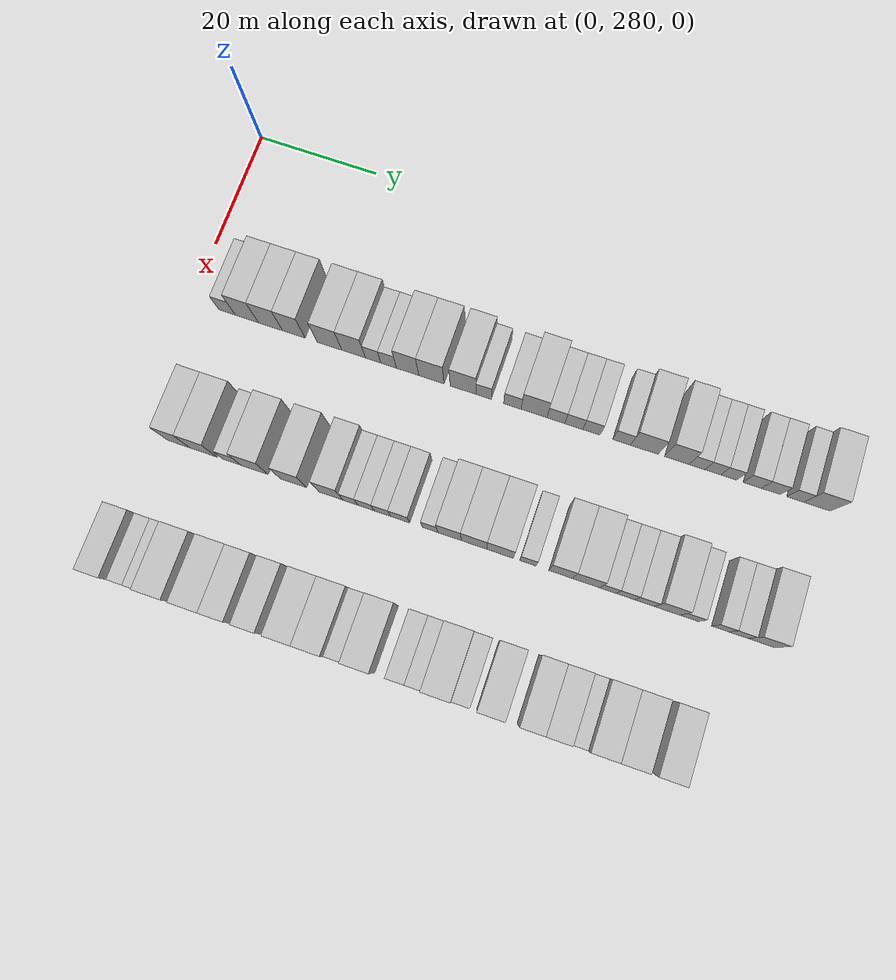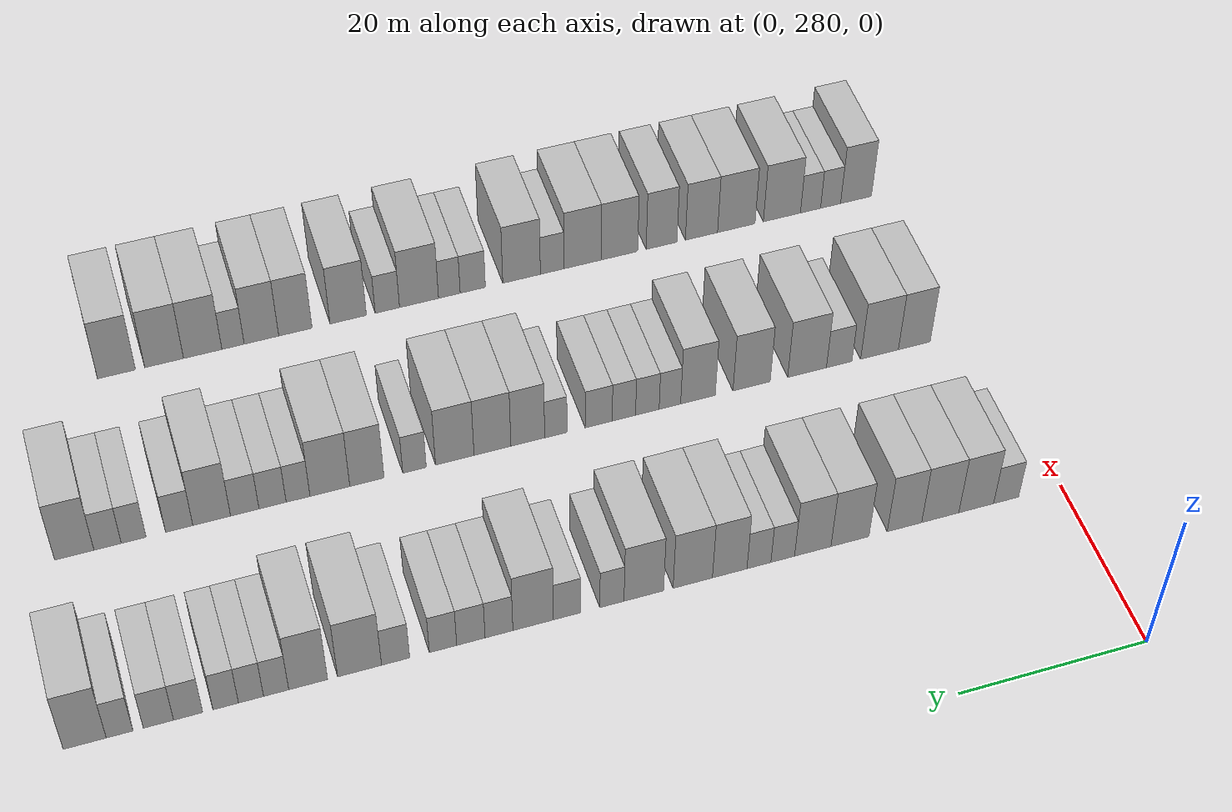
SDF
<sdf version="1.6">
 <world name="default">
  <model name="building_172">
   <static>1</static>
   <pose>25.0000 286.2029 0 0.000000 0.000000 0.000000</pose>
   <link name="link">
    <pose>0 0 3.00 0 0 0</pose>
    <collision name="collision"><geometry><box><size>10.0000 2.7897 6.0000</size></box></geometry></collision>
    <visual name="visual">
     <cast_shadows>0</cast_shadows>
     <geometry><box><size>10.0000 2.7897 6.0000</size></box></geometry>
     <material>
      <script>
       <uri>model://HANNAS_wall/materials/scripts</uri>
       <uri>model://HANNAS_wall/materials/textures</uri>
       <name>vrc/HANNAS_wall</name>
      </script>
     </material>
    </visual>
   </link>
  </model>
  <model name="building_173">
   <static>1</static>
   <pose>25.0000 289.5311 0 0.000000 0.000000 0.000000</pose>
   <link name="link">
    <pose>0 0 4.50 0 0 0</pose>
    <collision name="collision"><geometry><box><size>10.0000 3.8667 9.0000</size></box></geometry></collision>
    <visual name="visual">
     <cast_shadows>0</cast_shadows>
     <geometry><box><size>10.0000 3.8667 9.0000</size></box></geometry>
     <material>
      <script>
       <uri>model://HANNAS_wall/materials/scripts</uri>
       <uri>model://HANNAS_wall/materials/textures</uri>
       <name>vrc/HANNAS_wall</name>
      </script>
     </material>
    </visual>
   </link>
  </model>
  <model name="building_174">
   <static>1</static>
   <pose>25.0000 293.5119 0 0.000000 0.000000 0.000000</pose>
   <link name="link">
    <pose>0 0 4.50 0 0 0</pose>
    <collision name="collision"><geometry><box><size>10.0000 4.0949 9.0000</size></box></geometry></collision>
    <visual name="visual">
     <cast_shadows>0</cast_shadows>
     <geometry><box><size>10.0000 4.0949 9.0000</size></box></geometry>
     <material>
      <script>
       <uri>model://HANNAS_wall/materials/scripts</uri>
       <uri>model://HANNAS_wall/materials/textures</uri>
       <name>vrc/HANNAS_wall</name>
      </script>
     </material>
    </visual>
   </link>
  </model>
  <model name="building_175">
   <static>1</static>
   <pose>25.0000 297.4435 0 0.000000 0.000000 0.000000</pose>
   <link name="link">
    <pose>0 0 4.50 0 0 0</pose>
    <collision name="collision"><geometry><box><size>10.0000 3.7682 9.0000</size></box></geometry></collision>
    <visual name="visual">
     <cast_shadows>0</cast_shadows>
     <geometry><box><size>10.0000 3.7682 9.0000</size></box></geometry>
     <material>
      <script>
       <uri>model://HANNAS_wall/materials/scripts</uri>
       <uri>model://HANNAS_wall/materials/textures</uri>
       <name>vrc/HANNAS_wall</name>
      </script>
     </material>
    </visual>
   </link>
  </model>
  <model name="building_176">
   <static>1</static>
   <pose>25.0000 303.3947 0 0.000000 0.000000 0.000000</pose>
   <link name="link">
    <pose>0 0 4.50 0 0 0</pose>
    <collision name="collision"><geometry><box><size>10.0000 4.1342 9.0000</size></box></geometry></collision>
    <visual name="visual">
     <cast_shadows>0</cast_shadows>
     <geometry><box><size>10.0000 4.1342 9.0000</size></box></geometry>
     <material>
      <script>
       <uri>model://HANNAS_wall/materials/scripts</uri>
       <uri>model://HANNAS_wall/materials/textures</uri>
       <name>vrc/HANNAS_wall</name>
      </script>
     </material>
    </visual>
   </link>
  </model>
  <model name="building_177">
   <static>1</static>
   <pose>25.0000 307.4259 0 0.000000 0.000000 0.000000</pose>
   <link name="link">
    <pose>0 0 4.50 0 0 0</pose>
    <collision name="collision"><geometry><box><size>10.0000 3.9284 9.0000</size></box></geometry></collision>
    <visual name="visual">
     <cast_shadows>0</cast_shadows>
     <geometry><box><size>10.0000 3.9284 9.0000</size></box></geometry>
     <material>
      <script>
       <uri>model://HANNAS_wall/materials/scripts</uri>
       <uri>model://HANNAS_wall/materials/textures</uri>
       <name>vrc/HANNAS_wall</name>
      </script>
     </material>
    </visual>
   </link>
  </model>
  <model name="building_178">
   <static>1</static>
   <pose>25.0000 310.6622 0 0.000000 0.000000 0.000000</pose>
   <link name="link">
    <pose>0 0 3.00 0 0 0</pose>
    <collision name="collision"><geometry><box><size>10.0000 2.5441 6.0000</size></box></geometry></collision>
    <visual name="visual">
     <cast_shadows>0</cast_shadows>
     <geometry><box><size>10.0000 2.5441 6.0000</size></box></geometry>
     <material>
      <script>
       <uri>model://HANNAS_wall/materials/scripts</uri>
       <uri>model://HANNAS_wall/materials/textures</uri>
       <name>vrc/HANNAS_wall</name>
      </script>
     </material>
    </visual>
   </link>
  </model>
  <model name="building_179">
   <static>1</static>
   <pose>25.0000 313.2145 0 0.000000 0.000000 0.000000</pose>
   <link name="link">
    <pose>0 0 3.00 0 0 0</pose>
    <collision name="collision"><geometry><box><size>10.0000 2.5605 6.0000</size></box></geometry></collision>
    <visual name="visual">
     <cast_shadows>0</cast_shadows>
     <geometry><box><size>10.0000 2.5605 6.0000</size></box></geometry>
     <material>
      <script>
       <uri>model://HANNAS_wall/materials/scripts</uri>
       <uri>model://HANNAS_wall/materials/textures</uri>
       <name>vrc/HANNAS_wall</name>
      </script>
     </material>
    </visual>
   </link>
  </model>
  <model name="building_180">
   <static>1</static>
   <pose>25.0000 316.3344 0 0.000000 0.000000 0.000000</pose>
   <link name="link">
    <pose>0 0 4.50 0 0 0</pose>
    <collision name="collision"><geometry><box><size>10.0000 3.6793 9.0000</size></box></geometry></collision>
    <visual name="visual">
     <cast_shadows>0</cast_shadows>
     <geometry><box><size>10.0000 3.6793 9.0000</size></box></geometry>
     <material>
      <script>
       <uri>model://HANNAS_wall/materials/scripts</uri>
       <uri>model://HANNAS_wall/materials/textures</uri>
       <name>vrc/HANNAS_wall</name>
      </script>
     </material>
    </visual>
   </link>
  </model>
  <model name="building_181">
   <static>1</static>
   <pose>25.0000 320.2554 0 0.000000 0.000000 0.000000</pose>
   <link name="link">
    <pose>0 0 4.50 0 0 0</pose>
    <collision name="collision"><geometry><box><size>10.0000 4.1627 9.0000</size></box></geometry></collision>
    <visual name="visual">
     <cast_shadows>0</cast_shadows>
     <geometry><box><size>10.0000 4.1627 9.0000</size></box></geometry>
     <material>
      <script>
       <uri>model://HANNAS_wall/materials/scripts</uri>
       <uri>model://HANNAS_wall/materials/textures</uri>
       <name>vrc/HANNAS_wall</name>
      </script>
     </material>
    </visual>
   </link>
  </model>
  <model name="building_182">
   <static>1</static>
   <pose>25.0000 325.4178 0 0.000000 0.000000 0.000000</pose>
   <link name="link">
    <pose>0 0 4.50 0 0 0</pose>
    <collision name="collision"><geometry><box><size>10.0000 4.1621 9.0000</size></box></geometry></collision>
    <visual name="visual">
     <cast_shadows>0</cast_shadows>
     <geometry><box><size>10.0000 4.1621 9.0000</size></box></geometry>
     <material>
      <script>
       <uri>model://HANNAS_wall/materials/scripts</uri>
       <uri>model://HANNAS_wall/materials/textures</uri>
       <name>vrc/HANNAS_wall</name>
      </script>
     </material>
    </visual>
   </link>
  </model>
  <model name="building_183">
   <static>1</static>
   <pose>25.0000 328.7618 0 0.000000 0.000000 0.000000</pose>
   <link name="link">
    <pose>0 0 3.00 0 0 0</pose>
    <collision name="collision"><geometry><box><size>10.0000 2.5260 6.0000</size></box></geometry></collision>
    <visual name="visual">
     <cast_shadows>0</cast_shadows>
     <geometry><box><size>10.0000 2.5260 6.0000</size></box></geometry>
     <material>
      <script>
       <uri>model://HANNAS_wall/materials/scripts</uri>
       <uri>model://HANNAS_wall/materials/textures</uri>
       <name>vrc/HANNAS_wall</name>
      </script>
     </material>
    </visual>
   </link>
  </model>
  <model name="building_184">
   <static>1</static>
   <pose>25.0000 333.4334 0 0.000000 0.000000 0.000000</pose>
   <link name="link">
    <pose>0 0 3.00 0 0 0</pose>
    <collision name="collision"><geometry><box><size>10.0000 2.8171 6.0000</size></box></geometry></collision>
    <visual name="visual">
     <cast_shadows>0</cast_shadows>
     <geometry><box><size>10.0000 2.8171 6.0000</size></box></geometry>
     <material>
      <script>
       <uri>model://HANNAS_wall/materials/scripts</uri>
       <uri>model://HANNAS_wall/materials/textures</uri>
       <name>vrc/HANNAS_wall</name>
      </script>
     </material>
    </visual>
   </link>
  </model>
  <model name="building_185">
   <static>1</static>
   <pose>25.0000 336.9319 0 0.000000 0.000000 0.000000</pose>
   <link name="link">
    <pose>0 0 4.50 0 0 0</pose>
    <collision name="collision"><geometry><box><size>10.0000 4.1801 9.0000</size></box></geometry></collision>
    <visual name="visual">
     <cast_shadows>0</cast_shadows>
     <geometry><box><size>10.0000 4.1801 9.0000</size></box></geometry>
     <material>
      <script>
       <uri>model://HANNAS_wall/materials/scripts</uri>
       <uri>model://HANNAS_wall/materials/textures</uri>
       <name>vrc/HANNAS_wall</name>
      </script>
     </material>
    </visual>
   </link>
  </model>
  <model name="building_186">
   <static>1</static>
   <pose>25.0000 340.4474 0 0.000000 0.000000 0.000000</pose>
   <link name="link">
    <pose>0 0 3.00 0 0 0</pose>
    <collision name="collision"><geometry><box><size>10.0000 2.8509 6.0000</size></box></geometry></collision>
    <visual name="visual">
     <cast_shadows>0</cast_shadows>
     <geometry><box><size>10.0000 2.8509 6.0000</size></box></geometry>
     <material>
      <script>
       <uri>model://HANNAS_wall/materials/scripts</uri>
       <uri>model://HANNAS_wall/materials/textures</uri>
       <name>vrc/HANNAS_wall</name>
      </script>
     </material>
    </visual>
   </link>
  </model>
  <model name="building_187">
   <static>1</static>
   <pose>25.0000 343.3236 0 0.000000 0.000000 0.000000</pose>
   <link name="link">
    <pose>0 0 3.00 0 0 0</pose>
    <collision name="collision"><geometry><box><size>10.0000 2.9015 6.0000</size></box></geometry></collision>
    <visual name="visual">
     <cast_shadows>0</cast_shadows>
     <geometry><box><size>10.0000 2.9015 6.0000</size></box></geometry>
     <material>
      <script>
       <uri>model://HANNAS_wall/materials/scripts</uri>
       <uri>model://HANNAS_wall/materials/textures</uri>
       <name>vrc/HANNAS_wall</name>
      </script>
     </material>
    </visual>
   </link>
  </model>
  <model name="building_188">
   <static>1</static>
   <pose>25.0000 346.1617 0 0.000000 0.000000 0.000000</pose>
   <link name="link">
    <pose>0 0 3.00 0 0 0</pose>
    <collision name="collision"><geometry><box><size>10.0000 2.7747 6.0000</size></box></geometry></collision>
    <visual name="visual">
     <cast_shadows>0</cast_shadows>
     <geometry><box><size>10.0000 2.7747 6.0000</size></box></geometry>
     <material>
      <script>
       <uri>model://HANNAS_wall/materials/scripts</uri>
       <uri>model://HANNAS_wall/materials/textures</uri>
       <name>vrc/HANNAS_wall</name>
      </script>
     </material>
    </visual>
   </link>
  </model>
  <model name="building_189">
   <static>1</static>
   <pose>25.0000 350.9665 0 0.000000 0.000000 0.000000</pose>
   <link name="link">
    <pose>0 0 3.00 0 0 0</pose>
    <collision name="collision"><geometry><box><size>10.0000 2.8349 6.0000</size></box></geometry></collision>
    <visual name="visual">
     <cast_shadows>0</cast_shadows>
     <geometry><box><size>10.0000 2.8349 6.0000</size></box></geometry>
     <material>
      <script>
       <uri>model://HANNAS_wall/materials/scripts</uri>
       <uri>model://HANNAS_wall/materials/textures</uri>
       <name>vrc/HANNAS_wall</name>
      </script>
     </material>
    </visual>
   </link>
  </model>
  <model name="building_190">
   <static>1</static>
   <pose>25.0000 354.5864 0 0.000000 0.000000 0.000000</pose>
   <link name="link">
    <pose>0 0 4.50 0 0 0</pose>
    <collision name="collision"><geometry><box><size>10.0000 4.4050 9.0000</size></box></geometry></collision>
    <visual name="visual">
     <cast_shadows>0</cast_shadows>
     <geometry><box><size>10.0000 4.4050 9.0000</size></box></geometry>
     <material>
      <script>
       <uri>model://HANNAS_wall/materials/scripts</uri>
       <uri>model://HANNAS_wall/materials/textures</uri>
       <name>vrc/HANNAS_wall</name>
      </script>
     </material>
    </visual>
   </link>
  </model>
  <model name="building_191">
   <static>1</static>
   <pose>25.0000 359.7237 0 0.000000 0.000000 0.000000</pose>
   <link name="link">
    <pose>0 0 4.50 0 0 0</pose>
    <collision name="collision"><geometry><box><size>10.0000 3.8695 9.0000</size></box></geometry></collision>
    <visual name="visual">
     <cast_shadows>0</cast_shadows>
     <geometry><box><size>10.0000 3.8695 9.0000</size></box></geometry>
     <material>
      <script>
       <uri>model://HANNAS_wall/materials/scripts</uri>
       <uri>model://HANNAS_wall/materials/textures</uri>
       <name>vrc/HANNAS_wall</name>
      </script>
     </material>
    </visual>
   </link>
  </model>
  <model name="building_192">
   <static>1</static>
   <pose>25.0000 362.9042 0 0.000000 0.000000 0.000000</pose>
   <link name="link">
    <pose>0 0 3.00 0 0 0</pose>
    <collision name="collision"><geometry><box><size>10.0000 2.4915 6.0000</size></box></geometry></collision>
    <visual name="visual">
     <cast_shadows>0</cast_shadows>
     <geometry><box><size>10.0000 2.4915 6.0000</size></box></geometry>
     <material>
      <script>
       <uri>model://HANNAS_wall/materials/scripts</uri>
       <uri>model://HANNAS_wall/materials/textures</uri>
       <name>vrc/HANNAS_wall</name>
      </script>
     </material>
    </visual>
   </link>
  </model>
  <model name="building_193">
   <static>1</static>
   <pose>25.0000 365.3871 0 0.000000 0.000000 0.000000</pose>
   <link name="link">
    <pose>0 0 3.00 0 0 0</pose>
    <collision name="collision"><geometry><box><size>10.0000 2.4743 6.0000</size></box></geometry></collision>
    <visual name="visual">
     <cast_shadows>0</cast_shadows>
     <geometry><box><size>10.0000 2.4743 6.0000</size></box></geometry>
     <material>
      <script>
       <uri>model://HANNAS_wall/materials/scripts</uri>
       <uri>model://HANNAS_wall/materials/textures</uri>
       <name>vrc/HANNAS_wall</name>
      </script>
     </material>
    </visual>
   </link>
  </model>
  <model name="building_194">
   <static>1</static>
   <pose>25.0000 367.8754 0 0.000000 0.000000 0.000000</pose>
   <link name="link">
    <pose>0 0 3.00 0 0 0</pose>
    <collision name="collision"><geometry><box><size>10.0000 2.5022 6.0000</size></box></geometry></collision>
    <visual name="visual">
     <cast_shadows>0</cast_shadows>
     <geometry><box><size>10.0000 2.5022 6.0000</size></box></geometry>
     <material>
      <script>
       <uri>model://HANNAS_wall/materials/scripts</uri>
       <uri>model://HANNAS_wall/materials/textures</uri>
       <name>vrc/HANNAS_wall</name>
      </script>
     </material>
    </visual>
   </link>
  </model>
  <model name="building_195">
   <static>1</static>
   <pose>25.0000 371.5514 0 0.000000 0.000000 0.000000</pose>
   <link name="link">
    <pose>0 0 3.00 0 0 0</pose>
    <collision name="collision"><geometry><box><size>10.0000 2.8500 6.0000</size></box></geometry></collision>
    <visual name="visual">
     <cast_shadows>0</cast_shadows>
     <geometry><box><size>10.0000 2.8500 6.0000</size></box></geometry>
     <material>
      <script>
       <uri>model://HANNAS_wall/materials/scripts</uri>
       <uri>model://HANNAS_wall/materials/textures</uri>
       <name>vrc/HANNAS_wall</name>
      </script>
     </material>
    </visual>
   </link>
  </model>
  <model name="building_196">
   <static>1</static>
   <pose>25.0000 374.4464 0 0.000000 0.000000 0.000000</pose>
   <link name="link">
    <pose>0 0 3.00 0 0 0</pose>
    <collision name="collision"><geometry><box><size>10.0000 2.9399 6.0000</size></box></geometry></collision>
    <visual name="visual">
     <cast_shadows>0</cast_shadows>
     <geometry><box><size>10.0000 2.9399 6.0000</size></box></geometry>
     <material>
      <script>
       <uri>model://HANNAS_wall/materials/scripts</uri>
       <uri>model://HANNAS_wall/materials/textures</uri>
       <name>vrc/HANNAS_wall</name>
      </script>
     </material>
    </visual>
   </link>
  </model>
  <model name="building_197">
   <static>1</static>
   <pose>25.0000 378.2085 0 0.000000 0.000000 0.000000</pose>
   <link name="link">
    <pose>0 0 3.00 0 0 0</pose>
    <collision name="collision"><geometry><box><size>10.0000 2.5844 6.0000</size></box></geometry></collision>
    <visual name="visual">
     <cast_shadows>0</cast_shadows>
     <geometry><box><size>10.0000 2.5844 6.0000</size></box></geometry>
     <material>
      <script>
       <uri>model://HANNAS_wall/materials/scripts</uri>
       <uri>model://HANNAS_wall/materials/textures</uri>
       <name>vrc/HANNAS_wall</name>
      </script>
     </material>
    </visual>
   </link>
  </model>
  <model name="building_198">
   <static>1</static>
   <pose>25.0000 381.5692 0 0.000000 0.000000 0.000000</pose>
   <link name="link">
    <pose>0 0 4.50 0 0 0</pose>
    <collision name="collision"><geometry><box><size>10.0000 4.1371 9.0000</size></box></geometry></collision>
    <visual name="visual">
     <cast_shadows>0</cast_shadows>
     <geometry><box><size>10.0000 4.1371 9.0000</size></box></geometry>
     <material>
      <script>
       <uri>model://HANNAS_wall/materials/scripts</uri>
       <uri>model://HANNAS_wall/materials/textures</uri>
       <name>vrc/HANNAS_wall</name>
      </script>
     </material>
    </visual>
   </link>
  </model>
  <model name="building_359">
   <static>1</static>
   <pose>47.0000 287.2759 0 0.000000 0.000000 0.000000</pose>
   <link name="link">
    <pose>0 0 4.50 0 0 0</pose>
    <collision name="collision"><geometry><box><size>10.0000 3.7039 9.0000</size></box></geometry></collision>
    <visual name="visual">
     <cast_shadows>0</cast_shadows>
     <geometry><box><size>10.0000 3.7039 9.0000</size></box></geometry>
     <material>
      <script>
       <uri>model://HANNAS_wall/materials/scripts</uri>
       <uri>model://HANNAS_wall/materials/textures</uri>
       <name>vrc/HANNAS_wall</name>
      </script>
     </material>
    </visual>
   </link>
  </model>
  <model name="building_360">
   <static>1</static>
   <pose>47.0000 291.3091 0 0.000000 0.000000 0.000000</pose>
   <link name="link">
    <pose>0 0 4.50 0 0 0</pose>
    <collision name="collision"><geometry><box><size>10.0000 4.3625 9.0000</size></box></geometry></collision>
    <visual name="visual">
     <cast_shadows>0</cast_shadows>
     <geometry><box><size>10.0000 4.3625 9.0000</size></box></geometry>
     <material>
      <script>
       <uri>model://HANNAS_wall/materials/scripts</uri>
       <uri>model://HANNAS_wall/materials/textures</uri>
       <name>vrc/HANNAS_wall</name>
      </script>
     </material>
    </visual>
   </link>
  </model>
  <model name="building_361">
   <static>1</static>
   <pose>47.0000 295.9614 0 0.000000 0.000000 0.000000</pose>
   <link name="link">
    <pose>0 0 3.00 0 0 0</pose>
    <collision name="collision"><geometry><box><size>10.0000 2.9422 6.0000</size></box></geometry></collision>
    <visual name="visual">
     <cast_shadows>0</cast_shadows>
     <geometry><box><size>10.0000 2.9422 6.0000</size></box></geometry>
     <material>
      <script>
       <uri>model://HANNAS_wall/materials/scripts</uri>
       <uri>model://HANNAS_wall/materials/textures</uri>
       <name>vrc/HANNAS_wall</name>
      </script>
     </material>
    </visual>
   </link>
  </model>
  <model name="building_362">
   <static>1</static>
   <pose>47.0000 299.6468 0 0.000000 0.000000 0.000000</pose>
   <link name="link">
    <pose>0 0 4.50 0 0 0</pose>
    <collision name="collision"><geometry><box><size>10.0000 4.4284 9.0000</size></box></geometry></collision>
    <visual name="visual">
     <cast_shadows>0</cast_shadows>
     <geometry><box><size>10.0000 4.4284 9.0000</size></box></geometry>
     <material>
      <script>
       <uri>model://HANNAS_wall/materials/scripts</uri>
       <uri>model://HANNAS_wall/materials/textures</uri>
       <name>vrc/HANNAS_wall</name>
      </script>
     </material>
    </visual>
   </link>
  </model>
  <model name="building_363">
   <static>1</static>
   <pose>47.0000 305.9651 0 0.000000 0.000000 0.000000</pose>
   <link name="link">
    <pose>0 0 4.50 0 0 0</pose>
    <collision name="collision"><geometry><box><size>10.0000 4.2082 9.0000</size></box></geometry></collision>
    <visual name="visual">
     <cast_shadows>0</cast_shadows>
     <geometry><box><size>10.0000 4.2082 9.0000</size></box></geometry>
     <material>
      <script>
       <uri>model://HANNAS_wall/materials/scripts</uri>
       <uri>model://HANNAS_wall/materials/textures</uri>
       <name>vrc/HANNAS_wall</name>
      </script>
     </material>
    </visual>
   </link>
  </model>
  <model name="building_364">
   <static>1</static>
   <pose>47.0000 312.0147 0 0.000000 0.000000 0.000000</pose>
   <link name="link">
    <pose>0 0 4.50 0 0 0</pose>
    <collision name="collision"><geometry><box><size>10.0000 3.8911 9.0000</size></box></geometry></collision>
    <visual name="visual">
     <cast_shadows>0</cast_shadows>
     <geometry><box><size>10.0000 3.8911 9.0000</size></box></geometry>
     <material>
      <script>
       <uri>model://HANNAS_wall/materials/scripts</uri>
       <uri>model://HANNAS_wall/materials/textures</uri>
       <name>vrc/HANNAS_wall</name>
      </script>
     </material>
    </visual>
   </link>
  </model>
  <model name="building_365">
   <static>1</static>
   <pose>47.0000 315.1624 0 0.000000 0.000000 0.000000</pose>
   <link name="link">
    <pose>0 0 3.00 0 0 0</pose>
    <collision name="collision"><geometry><box><size>10.0000 2.4042 6.0000</size></box></geometry></collision>
    <visual name="visual">
     <cast_shadows>0</cast_shadows>
     <geometry><box><size>10.0000 2.4042 6.0000</size></box></geometry>
     <material>
      <script>
       <uri>model://HANNAS_wall/materials/scripts</uri>
       <uri>model://HANNAS_wall/materials/textures</uri>
       <name>vrc/HANNAS_wall</name>
      </script>
     </material>
    </visual>
   </link>
  </model>
  <model name="building_366">
   <static>1</static>
   <pose>47.0000 317.6771 0 0.000000 0.000000 0.000000</pose>
   <link name="link">
    <pose>0 0 3.00 0 0 0</pose>
    <collision name="collision"><geometry><box><size>10.0000 2.6253 6.0000</size></box></geometry></collision>
    <visual name="visual">
     <cast_shadows>0</cast_shadows>
     <geometry><box><size>10.0000 2.6253 6.0000</size></box></geometry>
     <material>
      <script>
       <uri>model://HANNAS_wall/materials/scripts</uri>
       <uri>model://HANNAS_wall/materials/textures</uri>
       <name>vrc/HANNAS_wall</name>
      </script>
     </material>
    </visual>
   </link>
  </model>
  <model name="building_367">
   <static>1</static>
   <pose>47.0000 320.2850 0 0.000000 0.000000 0.000000</pose>
   <link name="link">
    <pose>0 0 3.00 0 0 0</pose>
    <collision name="collision"><geometry><box><size>10.0000 2.5906 6.0000</size></box></geometry></collision>
    <visual name="visual">
     <cast_shadows>0</cast_shadows>
     <geometry><box><size>10.0000 2.5906 6.0000</size></box></geometry>
     <material>
      <script>
       <uri>model://HANNAS_wall/materials/scripts</uri>
       <uri>model://HANNAS_wall/materials/textures</uri>
       <name>vrc/HANNAS_wall</name>
      </script>
     </material>
    </visual>
   </link>
  </model>
  <model name="building_368">
   <static>1</static>
   <pose>47.0000 323.0760 0 0.000000 0.000000 0.000000</pose>
   <link name="link">
    <pose>0 0 3.00 0 0 0</pose>
    <collision name="collision"><geometry><box><size>10.0000 2.9914 6.0000</size></box></geometry></collision>
    <visual name="visual">
     <cast_shadows>0</cast_shadows>
     <geometry><box><size>10.0000 2.9914 6.0000</size></box></geometry>
     <material>
      <script>
       <uri>model://HANNAS_wall/materials/scripts</uri>
       <uri>model://HANNAS_wall/materials/textures</uri>
       <name>vrc/HANNAS_wall</name>
      </script>
     </material>
    </visual>
   </link>
  </model>
  <model name="building_369">
   <static>1</static>
   <pose>47.0000 327.7946 0 0.000000 0.000000 0.000000</pose>
   <link name="link">
    <pose>0 0 3.00 0 0 0</pose>
    <collision name="collision"><geometry><box><size>10.0000 2.4458 6.0000</size></box></geometry></collision>
    <visual name="visual">
     <cast_shadows>0</cast_shadows>
     <geometry><box><size>10.0000 2.4458 6.0000</size></box></geometry>
     <material>
      <script>
       <uri>model://HANNAS_wall/materials/scripts</uri>
       <uri>model://HANNAS_wall/materials/textures</uri>
       <name>vrc/HANNAS_wall</name>
      </script>
     </material>
    </visual>
   </link>
  </model>
  <model name="building_370">
   <static>1</static>
   <pose>47.0000 330.8596 0 0.000000 0.000000 0.000000</pose>
   <link name="link">
    <pose>0 0 4.50 0 0 0</pose>
    <collision name="collision"><geometry><box><size>10.0000 3.6844 9.0000</size></box></geometry></collision>
    <visual name="visual">
     <cast_shadows>0</cast_shadows>
     <geometry><box><size>10.0000 3.6844 9.0000</size></box></geometry>
     <material>
      <script>
       <uri>model://HANNAS_wall/materials/scripts</uri>
       <uri>model://HANNAS_wall/materials/textures</uri>
       <name>vrc/HANNAS_wall</name>
      </script>
     </material>
    </visual>
   </link>
  </model>
  <model name="building_371">
   <static>1</static>
   <pose>47.0000 334.7067 0 0.000000 0.000000 0.000000</pose>
   <link name="link">
    <pose>0 0 4.50 0 0 0</pose>
    <collision name="collision"><geometry><box><size>10.0000 4.0098 9.0000</size></box></geometry></collision>
    <visual name="visual">
     <cast_shadows>0</cast_shadows>
     <geometry><box><size>10.0000 4.0098 9.0000</size></box></geometry>
     <material>
      <script>
       <uri>model://HANNAS_wall/materials/scripts</uri>
       <uri>model://HANNAS_wall/materials/textures</uri>
       <name>vrc/HANNAS_wall</name>
      </script>
     </material>
    </visual>
   </link>
  </model>
  <model name="building_372">
   <static>1</static>
   <pose>47.0000 338.7901 0 0.000000 0.000000 0.000000</pose>
   <link name="link">
    <pose>0 0 4.50 0 0 0</pose>
    <collision name="collision"><geometry><box><size>10.0000 4.1570 9.0000</size></box></geometry></collision>
    <visual name="visual">
     <cast_shadows>0</cast_shadows>
     <geometry><box><size>10.0000 4.1570 9.0000</size></box></geometry>
     <material>
      <script>
       <uri>model://HANNAS_wall/materials/scripts</uri>
       <uri>model://HANNAS_wall/materials/textures</uri>
       <name>vrc/HANNAS_wall</name>
      </script>
     </material>
    </visual>
   </link>
  </model>
  <model name="building_373">
   <static>1</static>
   <pose>47.0000 343.1267 0 0.000000 0.000000 0.000000</pose>
   <link name="link">
    <pose>0 0 3.00 0 0 0</pose>
    <collision name="collision"><geometry><box><size>10.0000 2.5161 6.0000</size></box></geometry></collision>
    <visual name="visual">
     <cast_shadows>0</cast_shadows>
     <geometry><box><size>10.0000 2.5161 6.0000</size></box></geometry>
     <material>
      <script>
       <uri>model://HANNAS_wall/materials/scripts</uri>
       <uri>model://HANNAS_wall/materials/textures</uri>
       <name>vrc/HANNAS_wall</name>
      </script>
     </material>
    </visual>
   </link>
  </model>
  <model name="building_374">
   <static>1</static>
   <pose>47.0000 348.2101 0 0.000000 0.000000 0.000000</pose>
   <link name="link">
    <pose>0 0 4.50 0 0 0</pose>
    <collision name="collision"><geometry><box><size>10.0000 3.6507 9.0000</size></box></geometry></collision>
    <visual name="visual">
     <cast_shadows>0</cast_shadows>
     <geometry><box><size>10.0000 3.6507 9.0000</size></box></geometry>
     <material>
      <script>
       <uri>model://HANNAS_wall/materials/scripts</uri>
       <uri>model://HANNAS_wall/materials/textures</uri>
       <name>vrc/HANNAS_wall</name>
      </script>
     </material>
    </visual>
   </link>
  </model>
  <model name="building_375">
   <static>1</static>
   <pose>47.0000 352.1383 0 0.000000 0.000000 0.000000</pose>
   <link name="link">
    <pose>0 0 4.50 0 0 0</pose>
    <collision name="collision"><geometry><box><size>10.0000 4.2059 9.0000</size></box></geometry></collision>
    <visual name="visual">
     <cast_shadows>0</cast_shadows>
     <geometry><box><size>10.0000 4.2059 9.0000</size></box></geometry>
     <material>
      <script>
       <uri>model://HANNAS_wall/materials/scripts</uri>
       <uri>model://HANNAS_wall/materials/textures</uri>
       <name>vrc/HANNAS_wall</name>
      </script>
     </material>
    </visual>
   </link>
  </model>
  <model name="building_376">
   <static>1</static>
   <pose>47.0000 355.4985 0 0.000000 0.000000 0.000000</pose>
   <link name="link">
    <pose>0 0 3.00 0 0 0</pose>
    <collision name="collision"><geometry><box><size>10.0000 2.5144 6.0000</size></box></geometry></collision>
    <visual name="visual">
     <cast_shadows>0</cast_shadows>
     <geometry><box><size>10.0000 2.5144 6.0000</size></box></geometry>
     <material>
      <script>
       <uri>model://HANNAS_wall/materials/scripts</uri>
       <uri>model://HANNAS_wall/materials/textures</uri>
       <name>vrc/HANNAS_wall</name>
      </script>
     </material>
    </visual>
   </link>
  </model>
  <model name="building_377">
   <static>1</static>
   <pose>47.0000 358.1798 0 0.000000 0.000000 0.000000</pose>
   <link name="link">
    <pose>0 0 3.00 0 0 0</pose>
    <collision name="collision"><geometry><box><size>10.0000 2.8482 6.0000</size></box></geometry></collision>
    <visual name="visual">
     <cast_shadows>0</cast_shadows>
     <geometry><box><size>10.0000 2.8482 6.0000</size></box></geometry>
     <material>
      <script>
       <uri>model://HANNAS_wall/materials/scripts</uri>
       <uri>model://HANNAS_wall/materials/textures</uri>
       <name>vrc/HANNAS_wall</name>
      </script>
     </material>
    </visual>
   </link>
  </model>
  <model name="building_378">
   <static>1</static>
   <pose>47.0000 361.0875 0 0.000000 0.000000 0.000000</pose>
   <link name="link">
    <pose>0 0 3.00 0 0 0</pose>
    <collision name="collision"><geometry><box><size>10.0000 2.9673 6.0000</size></box></geometry></collision>
    <visual name="visual">
     <cast_shadows>0</cast_shadows>
     <geometry><box><size>10.0000 2.9673 6.0000</size></box></geometry>
     <material>
      <script>
       <uri>model://HANNAS_wall/materials/scripts</uri>
       <uri>model://HANNAS_wall/materials/textures</uri>
       <name>vrc/HANNAS_wall</name>
      </script>
     </material>
    </visual>
   </link>
  </model>
  <model name="building_379">
   <static>1</static>
   <pose>47.0000 364.5317 0 0.000000 0.000000 0.000000</pose>
   <link name="link">
    <pose>0 0 4.50 0 0 0</pose>
    <collision name="collision"><geometry><box><size>10.0000 3.9211 9.0000</size></box></geometry></collision>
    <visual name="visual">
     <cast_shadows>0</cast_shadows>
     <geometry><box><size>10.0000 3.9211 9.0000</size></box></geometry>
     <material>
      <script>
       <uri>model://HANNAS_wall/materials/scripts</uri>
       <uri>model://HANNAS_wall/materials/textures</uri>
       <name>vrc/HANNAS_wall</name>
      </script>
     </material>
    </visual>
   </link>
  </model>
  <model name="building_380">
   <static>1</static>
   <pose>47.0000 367.9013 0 0.000000 0.000000 0.000000</pose>
   <link name="link">
    <pose>0 0 3.00 0 0 0</pose>
    <collision name="collision"><geometry><box><size>10.0000 2.8181 6.0000</size></box></geometry></collision>
    <visual name="visual">
     <cast_shadows>0</cast_shadows>
     <geometry><box><size>10.0000 2.8181 6.0000</size></box></geometry>
     <material>
      <script>
       <uri>model://HANNAS_wall/materials/scripts</uri>
       <uri>model://HANNAS_wall/materials/textures</uri>
       <name>vrc/HANNAS_wall</name>
      </script>
     </material>
    </visual>
   </link>
  </model>
  <model name="building_381">
   <static>1</static>
   <pose>47.0000 372.5863 0 0.000000 0.000000 0.000000</pose>
   <link name="link">
    <pose>0 0 3.00 0 0 0</pose>
    <collision name="collision"><geometry><box><size>10.0000 2.5518 6.0000</size></box></geometry></collision>
    <visual name="visual">
     <cast_shadows>0</cast_shadows>
     <geometry><box><size>10.0000 2.5518 6.0000</size></box></geometry>
     <material>
      <script>
       <uri>model://HANNAS_wall/materials/scripts</uri>
       <uri>model://HANNAS_wall/materials/textures</uri>
       <name>vrc/HANNAS_wall</name>
      </script>
     </material>
    </visual>
   </link>
  </model>
  <model name="building_382">
   <static>1</static>
   <pose>47.0000 375.2591 0 0.000000 0.000000 0.000000</pose>
   <link name="link">
    <pose>0 0 3.00 0 0 0</pose>
    <collision name="collision"><geometry><box><size>10.0000 2.7939 6.0000</size></box></geometry></collision>
    <visual name="visual">
     <cast_shadows>0</cast_shadows>
     <geometry><box><size>10.0000 2.7939 6.0000</size></box></geometry>
     <material>
      <script>
       <uri>model://HANNAS_wall/materials/scripts</uri>
       <uri>model://HANNAS_wall/materials/textures</uri>
       <name>vrc/HANNAS_wall</name>
      </script>
     </material>
    </visual>
   </link>
  </model>
  <model name="building_383">
   <static>1</static>
   <pose>47.0000 378.6572 0 0.000000 0.000000 0.000000</pose>
   <link name="link">
    <pose>0 0 4.50 0 0 0</pose>
    <collision name="collision"><geometry><box><size>10.0000 4.0022 9.0000</size></box></geometry></collision>
    <visual name="visual">
     <cast_shadows>0</cast_shadows>
     <geometry><box><size>10.0000 4.0022 9.0000</size></box></geometry>
     <material>
      <script>
       <uri>model://HANNAS_wall/materials/scripts</uri>
       <uri>model://HANNAS_wall/materials/textures</uri>
       <name>vrc/HANNAS_wall</name>
      </script>
     </material>
    </visual>
   </link>
  </model>
  <model name="building_549">
   <static>1</static>
   <pose>69.0000 285.3143 0 0.000000 0.000000 0.000000</pose>
   <link name="link">
    <pose>0 0 4.50 0 0 0</pose>
    <collision name="collision"><geometry><box><size>10.0000 3.7587 9.0000</size></box></geometry></collision>
    <visual name="visual">
     <cast_shadows>0</cast_shadows>
     <geometry><box><size>10.0000 3.7587 9.0000</size></box></geometry>
     <material>
      <script>
       <uri>model://HANNAS_wall/materials/scripts</uri>
       <uri>model://HANNAS_wall/materials/textures</uri>
       <name>vrc/HANNAS_wall</name>
      </script>
     </material>
    </visual>
   </link>
  </model>
  <model name="building_550">
   <static>1</static>
   <pose>69.0000 288.4080 0 0.000000 0.000000 0.000000</pose>
   <link name="link">
    <pose>0 0 3.00 0 0 0</pose>
    <collision name="collision"><geometry><box><size>10.0000 2.4287 6.0000</size></box></geometry></collision>
    <visual name="visual">
     <cast_shadows>0</cast_shadows>
     <geometry><box><size>10.0000 2.4287 6.0000</size></box></geometry>
     <material>
      <script>
       <uri>model://HANNAS_wall/materials/scripts</uri>
       <uri>model://HANNAS_wall/materials/textures</uri>
       <name>vrc/HANNAS_wall</name>
      </script>
     </material>
    </visual>
   </link>
  </model>
  <model name="building_551">
   <static>1</static>
   <pose>69.0000 290.8377 0 0.000000 0.000000 0.000000</pose>
   <link name="link">
    <pose>0 0 3.00 0 0 0</pose>
    <collision name="collision"><geometry><box><size>10.0000 2.4307 6.0000</size></box></geometry></collision>
    <visual name="visual">
     <cast_shadows>0</cast_shadows>
     <geometry><box><size>10.0000 2.4307 6.0000</size></box></geometry>
     <material>
      <script>
       <uri>model://HANNAS_wall/materials/scripts</uri>
       <uri>model://HANNAS_wall/materials/textures</uri>
       <name>vrc/HANNAS_wall</name>
      </script>
     </material>
    </visual>
   </link>
  </model>
  <model name="building_552">
   <static>1</static>
   <pose>69.0000 294.2850 0 0.000000 0.000000 0.000000</pose>
   <link name="link">
    <pose>0 0 4.50 0 0 0</pose>
    <collision name="collision"><geometry><box><size>10.0000 4.4639 9.0000</size></box></geometry></collision>
    <visual name="visual">
     <cast_shadows>0</cast_shadows>
     <geometry><box><size>10.0000 4.4639 9.0000</size></box></geometry>
     <material>
      <script>
       <uri>model://HANNAS_wall/materials/scripts</uri>
       <uri>model://HANNAS_wall/materials/textures</uri>
       <name>vrc/HANNAS_wall</name>
      </script>
     </material>
    </visual>
   </link>
  </model>
  <model name="building_553">
   <static>1</static>
   <pose>69.0000 299.7555 0 0.000000 0.000000 0.000000</pose>
   <link name="link">
    <pose>0 0 4.50 0 0 0</pose>
    <collision name="collision"><geometry><box><size>10.0000 4.4771 9.0000</size></box></geometry></collision>
    <visual name="visual">
     <cast_shadows>0</cast_shadows>
     <geometry><box><size>10.0000 4.4771 9.0000</size></box></geometry>
     <material>
      <script>
       <uri>model://HANNAS_wall/materials/scripts</uri>
       <uri>model://HANNAS_wall/materials/textures</uri>
       <name>vrc/HANNAS_wall</name>
      </script>
     </material>
    </visual>
   </link>
  </model>
  <model name="building_554">
   <static>1</static>
   <pose>69.0000 303.9052 0 0.000000 0.000000 0.000000</pose>
   <link name="link">
    <pose>0 0 4.50 0 0 0</pose>
    <collision name="collision"><geometry><box><size>10.0000 3.8224 9.0000</size></box></geometry></collision>
    <visual name="visual">
     <cast_shadows>0</cast_shadows>
     <geometry><box><size>10.0000 3.8224 9.0000</size></box></geometry>
     <material>
      <script>
       <uri>model://HANNAS_wall/materials/scripts</uri>
       <uri>model://HANNAS_wall/materials/textures</uri>
       <name>vrc/HANNAS_wall</name>
      </script>
     </material>
    </visual>
   </link>
  </model>
  <model name="building_555">
   <static>1</static>
   <pose>69.0000 308.6321 0 0.000000 0.000000 0.000000</pose>
   <link name="link">
    <pose>0 0 4.50 0 0 0</pose>
    <collision name="collision"><geometry><box><size>10.0000 3.6314 9.0000</size></box></geometry></collision>
    <visual name="visual">
     <cast_shadows>0</cast_shadows>
     <geometry><box><size>10.0000 3.6314 9.0000</size></box></geometry>
     <material>
      <script>
       <uri>model://HANNAS_wall/materials/scripts</uri>
       <uri>model://HANNAS_wall/materials/textures</uri>
       <name>vrc/HANNAS_wall</name>
      </script>
     </material>
    </visual>
   </link>
  </model>
  <model name="building_556">
   <static>1</static>
   <pose>69.0000 313.5828 0 0.000000 0.000000 0.000000</pose>
   <link name="link">
    <pose>0 0 4.50 0 0 0</pose>
    <collision name="collision"><geometry><box><size>10.0000 4.2699 9.0000</size></box></geometry></collision>
    <visual name="visual">
     <cast_shadows>0</cast_shadows>
     <geometry><box><size>10.0000 4.2699 9.0000</size></box></geometry>
     <material>
      <script>
       <uri>model://HANNAS_wall/materials/scripts</uri>
       <uri>model://HANNAS_wall/materials/textures</uri>
       <name>vrc/HANNAS_wall</name>
      </script>
     </material>
    </visual>
   </link>
  </model>
  <model name="building_557">
   <static>1</static>
   <pose>69.0000 317.8788 0 0.000000 0.000000 0.000000</pose>
   <link name="link">
    <pose>0 0 4.50 0 0 0</pose>
    <collision name="collision"><geometry><box><size>10.0000 4.3221 9.0000</size></box></geometry></collision>
    <visual name="visual">
     <cast_shadows>0</cast_shadows>
     <geometry><box><size>10.0000 4.3221 9.0000</size></box></geometry>
     <material>
      <script>
       <uri>model://HANNAS_wall/materials/scripts</uri>
       <uri>model://HANNAS_wall/materials/textures</uri>
       <name>vrc/HANNAS_wall</name>
      </script>
     </material>
    </visual>
   </link>
  </model>
  <model name="building_558">
   <static>1</static>
   <pose>69.0000 321.4135 0 0.000000 0.000000 0.000000</pose>
   <link name="link">
    <pose>0 0 3.00 0 0 0</pose>
    <collision name="collision"><geometry><box><size>10.0000 2.7474 6.0000</size></box></geometry></collision>
    <visual name="visual">
     <cast_shadows>0</cast_shadows>
     <geometry><box><size>10.0000 2.7474 6.0000</size></box></geometry>
     <material>
      <script>
       <uri>model://HANNAS_wall/materials/scripts</uri>
       <uri>model://HANNAS_wall/materials/textures</uri>
       <name>vrc/HANNAS_wall</name>
      </script>
     </material>
    </visual>
   </link>
  </model>
  <model name="building_559">
   <static>1</static>
   <pose>69.0000 324.9539 0 0.000000 0.000000 0.000000</pose>
   <link name="link">
    <pose>0 0 4.50 0 0 0</pose>
    <collision name="collision"><geometry><box><size>10.0000 4.3334 9.0000</size></box></geometry></collision>
    <visual name="visual">
     <cast_shadows>0</cast_shadows>
     <geometry><box><size>10.0000 4.3334 9.0000</size></box></geometry>
     <material>
      <script>
       <uri>model://HANNAS_wall/materials/scripts</uri>
       <uri>model://HANNAS_wall/materials/textures</uri>
       <name>vrc/HANNAS_wall</name>
      </script>
     </material>
    </visual>
   </link>
  </model>
  <model name="building_560">
   <static>1</static>
   <pose>69.0000 330.5622 0 0.000000 0.000000 0.000000</pose>
   <link name="link">
    <pose>0 0 3.00 0 0 0</pose>
    <collision name="collision"><geometry><box><size>10.0000 2.8831 6.0000</size></box></geometry></collision>
    <visual name="visual">
     <cast_shadows>0</cast_shadows>
     <geometry><box><size>10.0000 2.8831 6.0000</size></box></geometry>
     <material>
      <script>
       <uri>model://HANNAS_wall/materials/scripts</uri>
       <uri>model://HANNAS_wall/materials/textures</uri>
       <name>vrc/HANNAS_wall</name>
      </script>
     </material>
    </visual>
   </link>
  </model>
  <model name="building_561">
   <static>1</static>
   <pose>69.0000 333.2376 0 0.000000 0.000000 0.000000</pose>
   <link name="link">
    <pose>0 0 3.00 0 0 0</pose>
    <collision name="collision"><geometry><box><size>10.0000 2.4678 6.0000</size></box></geometry></collision>
    <visual name="visual">
     <cast_shadows>0</cast_shadows>
     <geometry><box><size>10.0000 2.4678 6.0000</size></box></geometry>
     <material>
      <script>
       <uri>model://HANNAS_wall/materials/scripts</uri>
       <uri>model://HANNAS_wall/materials/textures</uri>
       <name>vrc/HANNAS_wall</name>
      </script>
     </material>
    </visual>
   </link>
  </model>
  <model name="building_562">
   <static>1</static>
   <pose>69.0000 336.6821 0 0.000000 0.000000 0.000000</pose>
   <link name="link">
    <pose>0 0 4.50 0 0 0</pose>
    <collision name="collision"><geometry><box><size>10.0000 4.4211 9.0000</size></box></geometry></collision>
    <visual name="visual">
     <cast_shadows>0</cast_shadows>
     <geometry><box><size>10.0000 4.4211 9.0000</size></box></geometry>
     <material>
      <script>
       <uri>model://HANNAS_wall/materials/scripts</uri>
       <uri>model://HANNAS_wall/materials/textures</uri>
       <name>vrc/HANNAS_wall</name>
      </script>
     </material>
    </visual>
   </link>
  </model>
  <model name="building_563">
   <static>1</static>
   <pose>69.0000 340.2628 0 0.000000 0.000000 0.000000</pose>
   <link name="link">
    <pose>0 0 3.00 0 0 0</pose>
    <collision name="collision"><geometry><box><size>10.0000 2.7404 6.0000</size></box></geometry></collision>
    <visual name="visual">
     <cast_shadows>0</cast_shadows>
     <geometry><box><size>10.0000 2.7404 6.0000</size></box></geometry>
     <material>
      <script>
       <uri>model://HANNAS_wall/materials/scripts</uri>
       <uri>model://HANNAS_wall/materials/textures</uri>
       <name>vrc/HANNAS_wall</name>
      </script>
     </material>
    </visual>
   </link>
  </model>
  <model name="building_564">
   <static>1</static>
   <pose>69.0000 344.6726 0 0.000000 0.000000 0.000000</pose>
   <link name="link">
    <pose>0 0 4.50 0 0 0</pose>
    <collision name="collision"><geometry><box><size>10.0000 4.0793 9.0000</size></box></geometry></collision>
    <visual name="visual">
     <cast_shadows>0</cast_shadows>
     <geometry><box><size>10.0000 4.0793 9.0000</size></box></geometry>
     <material>
      <script>
       <uri>model://HANNAS_wall/materials/scripts</uri>
       <uri>model://HANNAS_wall/materials/textures</uri>
       <name>vrc/HANNAS_wall</name>
      </script>
     </material>
    </visual>
   </link>
  </model>
  <model name="building_565">
   <static>1</static>
   <pose>69.0000 350.5687 0 0.000000 0.000000 0.000000</pose>
   <link name="link">
    <pose>0 0 4.50 0 0 0</pose>
    <collision name="collision"><geometry><box><size>10.0000 3.7128 9.0000</size></box></geometry></collision>
    <visual name="visual">
     <cast_shadows>0</cast_shadows>
     <geometry><box><size>10.0000 3.7128 9.0000</size></box></geometry>
     <material>
      <script>
       <uri>model://HANNAS_wall/materials/scripts</uri>
       <uri>model://HANNAS_wall/materials/textures</uri>
       <name>vrc/HANNAS_wall</name>
      </script>
     </material>
    </visual>
   </link>
  </model>
  <model name="building_566">
   <static>1</static>
   <pose>69.0000 354.3329 0 0.000000 0.000000 0.000000</pose>
   <link name="link">
    <pose>0 0 4.50 0 0 0</pose>
    <collision name="collision"><geometry><box><size>10.0000 3.8156 9.0000</size></box></geometry></collision>
    <visual name="visual">
     <cast_shadows>0</cast_shadows>
     <geometry><box><size>10.0000 3.8156 9.0000</size></box></geometry>
     <material>
      <script>
       <uri>model://HANNAS_wall/materials/scripts</uri>
       <uri>model://HANNAS_wall/materials/textures</uri>
       <name>vrc/HANNAS_wall</name>
      </script>
     </material>
    </visual>
   </link>
  </model>
  <model name="building_567">
   <static>1</static>
   <pose>69.0000 357.4702 0 0.000000 0.000000 0.000000</pose>
   <link name="link">
    <pose>0 0 3.00 0 0 0</pose>
    <collision name="collision"><geometry><box><size>10.0000 2.4591 6.0000</size></box></geometry></collision>
    <visual name="visual">
     <cast_shadows>0</cast_shadows>
     <geometry><box><size>10.0000 2.4591 6.0000</size></box></geometry>
     <material>
      <script>
       <uri>model://HANNAS_wall/materials/scripts</uri>
       <uri>model://HANNAS_wall/materials/textures</uri>
       <name>vrc/HANNAS_wall</name>
      </script>
     </material>
    </visual>
   </link>
  </model>
  <model name="building_568">
   <static>1</static>
   <pose>69.0000 360.8007 0 0.000000 0.000000 0.000000</pose>
   <link name="link">
    <pose>0 0 4.50 0 0 0</pose>
    <collision name="collision"><geometry><box><size>10.0000 4.2019 9.0000</size></box></geometry></collision>
    <visual name="visual">
     <cast_shadows>0</cast_shadows>
     <geometry><box><size>10.0000 4.2019 9.0000</size></box></geometry>
     <material>
      <script>
       <uri>model://HANNAS_wall/materials/scripts</uri>
       <uri>model://HANNAS_wall/materials/textures</uri>
       <name>vrc/HANNAS_wall</name>
      </script>
     </material>
    </visual>
   </link>
  </model>
  <model name="building_569">
   <static>1</static>
   <pose>69.0000 365.0168 0 0.000000 0.000000 0.000000</pose>
   <link name="link">
    <pose>0 0 4.50 0 0 0</pose>
    <collision name="collision"><geometry><box><size>10.0000 4.2303 9.0000</size></box></geometry></collision>
    <visual name="visual">
     <cast_shadows>0</cast_shadows>
     <geometry><box><size>10.0000 4.2303 9.0000</size></box></geometry>
     <material>
      <script>
       <uri>model://HANNAS_wall/materials/scripts</uri>
       <uri>model://HANNAS_wall/materials/textures</uri>
       <name>vrc/HANNAS_wall</name>
      </script>
     </material>
    </visual>
   </link>
  </model>
  <model name="building_570">
   <static>1</static>
   <pose>69.0000 370.1880 0 0.000000 0.000000 0.000000</pose>
   <link name="link">
    <pose>0 0 4.50 0 0 0</pose>
    <collision name="collision"><geometry><box><size>10.0000 4.1121 9.0000</size></box></geometry></collision>
    <visual name="visual">
     <cast_shadows>0</cast_shadows>
     <geometry><box><size>10.0000 4.1121 9.0000</size></box></geometry>
     <material>
      <script>
       <uri>model://HANNAS_wall/materials/scripts</uri>
       <uri>model://HANNAS_wall/materials/textures</uri>
       <name>vrc/HANNAS_wall</name>
      </script>
     </material>
    </visual>
   </link>
  </model>
 </world>
</sdf>
